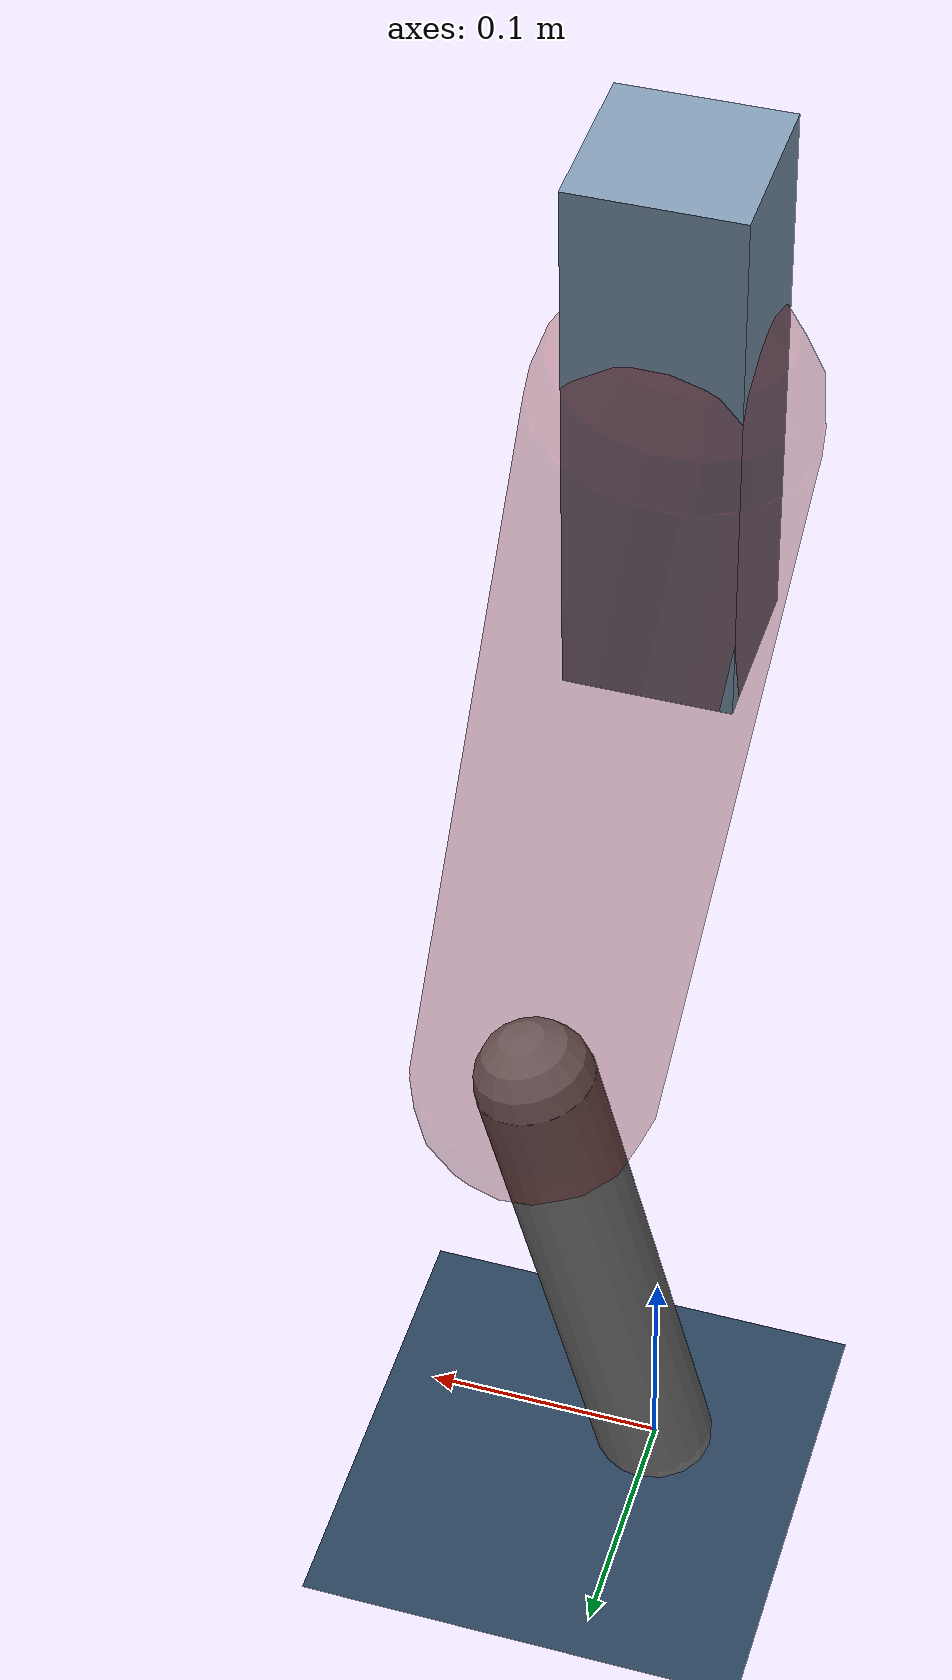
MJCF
<mujoco model="Hopper2D">
	<compiler inertiafromgeom="true" angle="radian" />
	<option timestep="0.001" integrator="implicit" cone="elliptic" solver="Newton" tolerance="1e-10" />

	<default>
		<geom contype="1" conaffinity="1" condim="3" friction="2 0.005 0.0001" solref="0.005 1" />
		<joint limited="true" damping="0.1" />
	</default>

	<asset>
		<texture name="skybox" type="skybox" builtin="gradient" rgb1=".4 .6 .8" rgb2="0 0 0" width="800" height="800" />
		<texture name="grid" type="2d" builtin="checker" rgb1=".1 .2 .3" rgb2=".2 .3 .4" width="300" height="300" mark="edge" markrgb=".2 .3 .4" />
		<material name="ground" texture="grid" texrepeat="1 1" texuniform="true" reflectance="0.1" />
		<material name="leg" rgba="0.5 0.6 0.7 1" />
	</asset>

	<worldbody>

		<geom name="floor" type="plane" size="5 5 0.25" material="ground" />

		<light directional="false" diffuse="0.8 0.8 0.8" specular="0.3 0.3 0.3" pos="0 0 2" dir="0 0 -1" />
		<light mode="targetbodycom" target="base" directional="false" diffuse="0.8 0.8 0.8" specular="0.3 0.3 0.3" pos="0 0 2" dir="0 0 -1" />

		<camera name="fixed" pos="0 -2 1" xyaxes="1 0 0 0 0 1" />
		<camera name="tracking" mode="trackcom" pos="0 -3 1" />

		<body name="root" pos="0 0 0.5595572700492359">
			<joint name="slide_x" type="slide" axis="1 0 0" range="-100 100" />
			<joint name="slide_z" type="slide" axis="0 0 1" range="0 10" />

			<body name="base" pos="0 0 0">
				<geom name="torso" type="box" size="0.03 0.03 0.1" mass="2.569" material="leg" />

				<body name="link1" pos="0 0 0" euler="0 1.422609283023391 0">
					<joint type="hinge" axis="0 -1 0" pos="0 0 0" name="hinge1" limited="true" range="-3.14 3.14" stiffness="0" damping="0.1" />
					<geom name="thigh" type="capsule" fromto="0 0 0 0.3499494790835402 0 0" size="0.05" rgba="0.5 0 0 0.3" mass="1.1265585414339125" />

					<body name="link2" pos="0.3499494790835402 0 0" euler="0 0.3856893365768625 0">
						<joint type="hinge" axis="0 -1 0" pos="0 0 0" name="hinge2" limited="true" range="-3.14 3.14" stiffness="0" damping="0.1" />
						<geom name="shank" type="capsule" fromto="0 0 0 0.21960779096569583 0 0" size="0.025" mass="0.41734701186912626" />

					</body>
				</body>
			</body>
		</body>
	</worldbody>

	<actuator>
		<motor name="torque1" joint="hinge1" ctrlrange="-55.102708967879444 55.102708967879444" ctrllimited="true" gear="1" />
		<motor name="torque2" joint="hinge2" ctrlrange="-158.34897940662285 158.34897940662285" ctrllimited="true" gear="1" />
	</actuator>
</mujoco>
